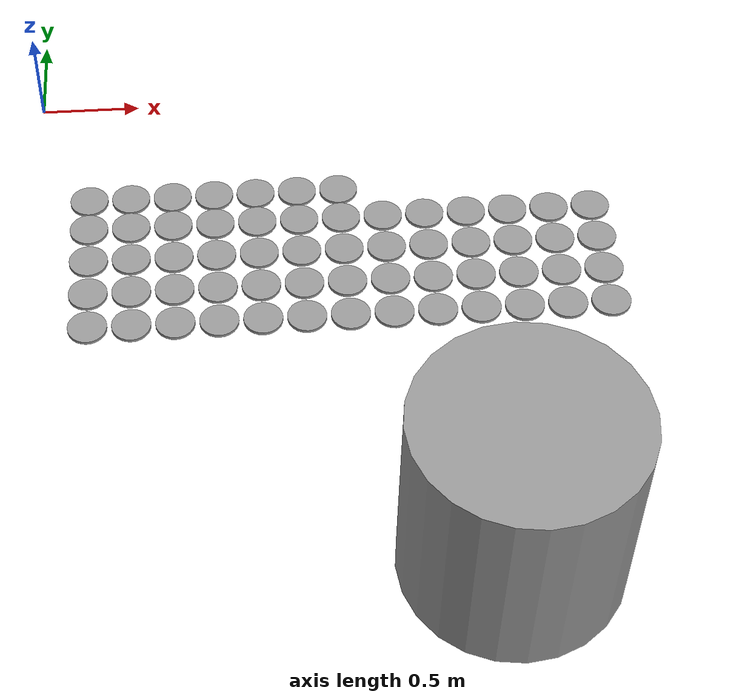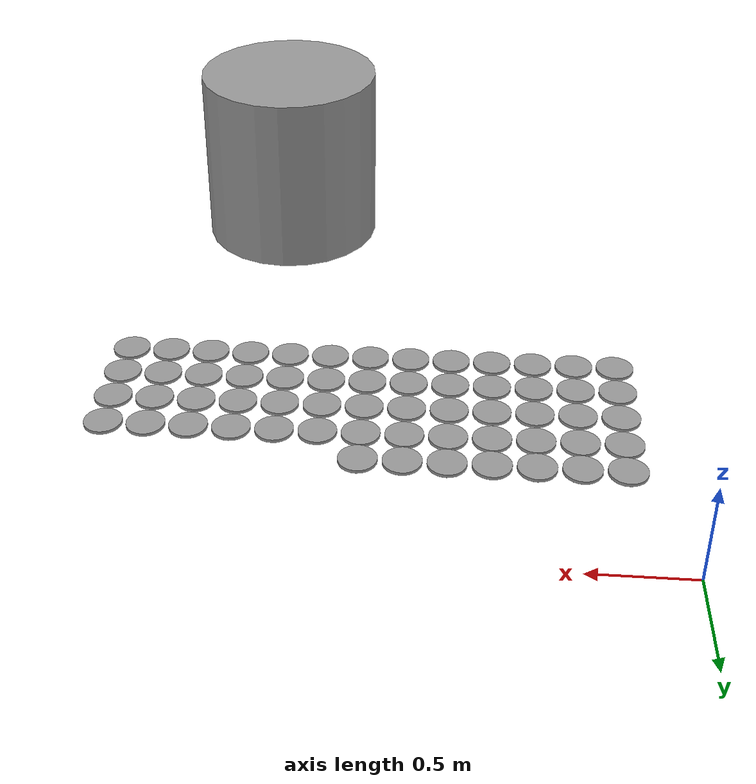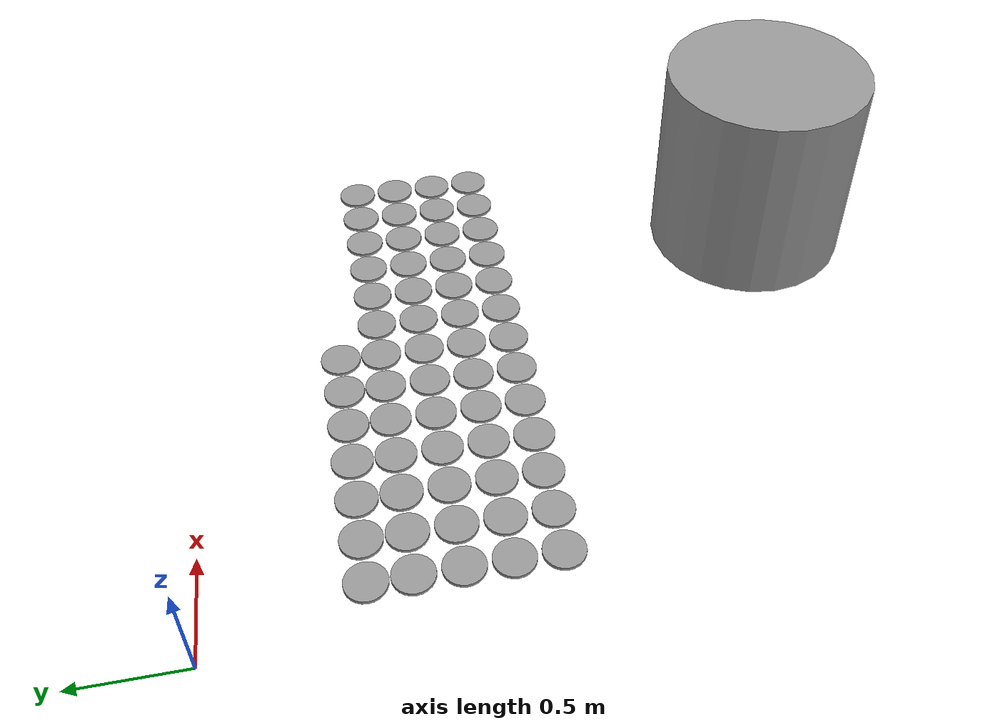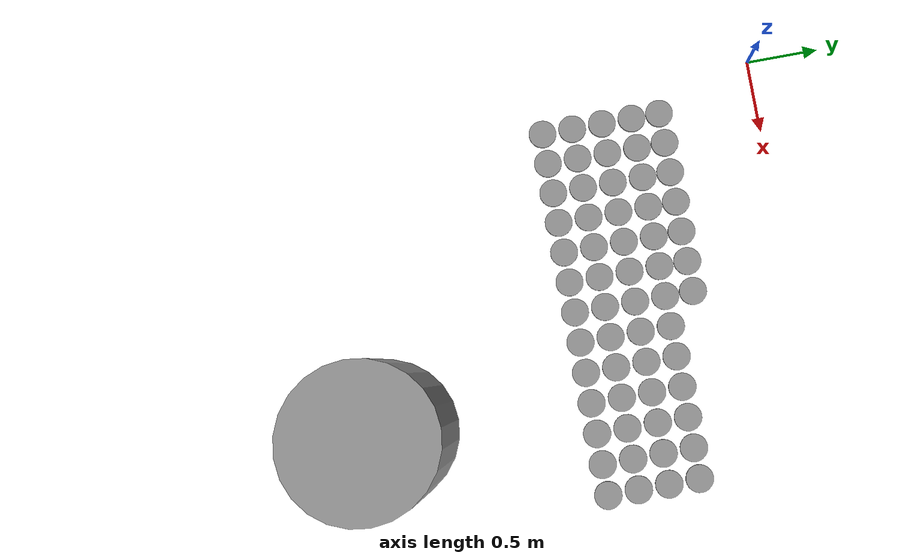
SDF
<sdf version="1.6">
 <world name="default">
  <model name="unit_cylinder_clone_625">
   <pose>0.25 -1.5 0.008117 0 -0 0</pose>
   <link name="link">
    <inertial>
     <mass>1</mass>
     <inertia><ixx>0.145833</ixx><ixy>0</ixy><ixz>0</ixz><iyy>0.145833</iyy><iyz>0</iyz><izz>0.125</izz></inertia>
    </inertial>
    <collision name="collision">
     <geometry><cylinder><radius>0.0950718</radius><length>0.0162339</length></cylinder></geometry>
     <max_contacts>5</max_contacts>
    </collision>
    <visual name="visual">
     <geometry><cylinder><radius>0.0950718</radius><length>0.0162339</length></cylinder></geometry>
     <material>
      <script><name>Gazebo/Grey</name><uri>file://media/materials/scripts/gazebo.material</uri></script>
     </material>
    </visual>
   </link>
  </model>
  <model name="unit_cylinder_clone_626">
   <pose>0.25 -1.29 0.008117 0 -0 0</pose>
   <link name="link">
    <inertial>
     <mass>1</mass>
     <inertia><ixx>0.145833</ixx><ixy>0</ixy><ixz>0</ixz><iyy>0.145833</iyy><iyz>0</iyz><izz>0.125</izz></inertia>
    </inertial>
    <collision name="collision">
     <geometry><cylinder><radius>0.0950718</radius><length>0.0162339</length></cylinder></geometry>
     <max_contacts>5</max_contacts>
    </collision>
    <visual name="visual">
     <geometry><cylinder><radius>0.0950718</radius><length>0.0162339</length></cylinder></geometry>
     <material>
      <script><name>Gazebo/Grey</name><uri>file://media/materials/scripts/gazebo.material</uri></script>
     </material>
    </visual>
   </link>
  </model>
  <model name="unit_cylinder_clone_627">
   <pose>0.25 -1.08 0.008117 0 -0 0</pose>
   <link name="link">
    <inertial>
     <mass>1</mass>
     <inertia><ixx>0.145833</ixx><ixy>0</ixy><ixz>0</ixz><iyy>0.145833</iyy><iyz>0</iyz><izz>0.125</izz></inertia>
    </inertial>
    <collision name="collision">
     <geometry><cylinder><radius>0.0950718</radius><length>0.0162339</length></cylinder></geometry>
     <max_contacts>5</max_contacts>
    </collision>
    <visual name="visual">
     <geometry><cylinder><radius>0.0950718</radius><length>0.0162339</length></cylinder></geometry>
     <material>
      <script><name>Gazebo/Grey</name><uri>file://media/materials/scripts/gazebo.material</uri></script>
     </material>
    </visual>
   </link>
  </model>
  <model name="unit_cylinder_clone_628">
   <pose>0.25 -0.87 0.008117 0 -0 0</pose>
   <link name="link">
    <inertial>
     <mass>1</mass>
     <inertia><ixx>0.145833</ixx><ixy>0</ixy><ixz>0</ixz><iyy>0.145833</iyy><iyz>0</iyz><izz>0.125</izz></inertia>
    </inertial>
    <collision name="collision">
     <geometry><cylinder><radius>0.0950718</radius><length>0.0162339</length></cylinder></geometry>
     <max_contacts>5</max_contacts>
    </collision>
    <visual name="visual">
     <geometry><cylinder><radius>0.0950718</radius><length>0.0162339</length></cylinder></geometry>
     <material>
      <script><name>Gazebo/Grey</name><uri>file://media/materials/scripts/gazebo.material</uri></script>
     </material>
    </visual>
   </link>
  </model>
  <model name="unit_cylinder_clone_629">
   <pose>0.25 -0.675077 0.008117 -0 -0 -0</pose>
   <link name="link">
    <inertial>
     <mass>1</mass>
     <inertia><ixx>0.145833</ixx><ixy>0</ixy><ixz>0</ixz><iyy>0.145833</iyy><iyz>0</iyz><izz>0.125</izz></inertia>
    </inertial>
    <collision name="collision">
     <geometry><cylinder><radius>0.0950718</radius><length>0.0162339</length></cylinder></geometry>
     <max_contacts>5</max_contacts>
    </collision>
    <visual name="visual">
     <geometry><cylinder><radius>0.0950718</radius><length>0.0162339</length></cylinder></geometry>
     <material>
      <script><name>Gazebo/Grey</name><uri>file://media/materials/scripts/gazebo.material</uri></script>
     </material>
    </visual>
   </link>
  </model>
  <model name="unit_cylinder_clone_630">
   <pose>0.46 -1.5 0.008117 0 -0 0</pose>
   <link name="link">
    <inertial>
     <mass>1</mass>
     <inertia><ixx>0.145833</ixx><ixy>0</ixy><ixz>0</ixz><iyy>0.145833</iyy><iyz>0</iyz><izz>0.125</izz></inertia>
    </inertial>
    <collision name="collision">
     <geometry><cylinder><radius>0.0950718</radius><length>0.0162339</length></cylinder></geometry>
     <max_contacts>5</max_contacts>
    </collision>
    <visual name="visual">
     <geometry><cylinder><radius>0.0950718</radius><length>0.0162339</length></cylinder></geometry>
     <material>
      <script><name>Gazebo/Grey</name><uri>file://media/materials/scripts/gazebo.material</uri></script>
     </material>
    </visual>
   </link>
  </model>
  <model name="unit_cylinder_clone_631">
   <pose>0.46 -1.29 0.008117 0 -0 0</pose>
   <link name="link">
    <inertial>
     <mass>1</mass>
     <inertia><ixx>0.145833</ixx><ixy>0</ixy><ixz>0</ixz><iyy>0.145833</iyy><iyz>0</iyz><izz>0.125</izz></inertia>
    </inertial>
    <collision name="collision">
     <geometry><cylinder><radius>0.0950718</radius><length>0.0162339</length></cylinder></geometry>
     <max_contacts>5</max_contacts>
    </collision>
    <visual name="visual">
     <geometry><cylinder><radius>0.0950718</radius><length>0.0162339</length></cylinder></geometry>
     <material>
      <script><name>Gazebo/Grey</name><uri>file://media/materials/scripts/gazebo.material</uri></script>
     </material>
    </visual>
   </link>
  </model>
  <model name="unit_cylinder_clone_632">
   <pose>0.46 -1.08 0.008117 0 -0 0</pose>
   <link name="link">
    <inertial>
     <mass>1</mass>
     <inertia><ixx>0.145833</ixx><ixy>0</ixy><ixz>0</ixz><iyy>0.145833</iyy><iyz>0</iyz><izz>0.125</izz></inertia>
    </inertial>
    <collision name="collision">
     <geometry><cylinder><radius>0.0950718</radius><length>0.0162339</length></cylinder></geometry>
     <max_contacts>5</max_contacts>
    </collision>
    <visual name="visual">
     <geometry><cylinder><radius>0.0950718</radius><length>0.0162339</length></cylinder></geometry>
     <material>
      <script><name>Gazebo/Grey</name><uri>file://media/materials/scripts/gazebo.material</uri></script>
     </material>
    </visual>
   </link>
  </model>
  <model name="unit_cylinder_clone_633">
   <pose>0.46 -0.87 0.008117 0 -0 0</pose>
   <link name="link">
    <inertial>
     <mass>1</mass>
     <inertia><ixx>0.145833</ixx><ixy>0</ixy><ixz>0</ixz><iyy>0.145833</iyy><iyz>0</iyz><izz>0.125</izz></inertia>
    </inertial>
    <collision name="collision">
     <geometry><cylinder><radius>0.0950718</radius><length>0.0162339</length></cylinder></geometry>
     <max_contacts>5</max_contacts>
    </collision>
    <visual name="visual">
     <geometry><cylinder><radius>0.0950718</radius><length>0.0162339</length></cylinder></geometry>
     <material>
      <script><name>Gazebo/Grey</name><uri>file://media/materials/scripts/gazebo.material</uri></script>
     </material>
    </visual>
   </link>
  </model>
  <model name="unit_cylinder_clone_634">
   <pose>0.46 -0.675077 0.008117 -0 -0 -0</pose>
   <link name="link">
    <inertial>
     <mass>1</mass>
     <inertia><ixx>0.145833</ixx><ixy>0</ixy><ixz>0</ixz><iyy>0.145833</iyy><iyz>0</iyz><izz>0.125</izz></inertia>
    </inertial>
    <collision name="collision">
     <geometry><cylinder><radius>0.0950718</radius><length>0.0162339</length></cylinder></geometry>
     <max_contacts>5</max_contacts>
    </collision>
    <visual name="visual">
     <geometry><cylinder><radius>0.0950718</radius><length>0.0162339</length></cylinder></geometry>
     <material>
      <script><name>Gazebo/Grey</name><uri>file://media/materials/scripts/gazebo.material</uri></script>
     </material>
    </visual>
   </link>
  </model>
  <model name="unit_cylinder_clone_635">
   <pose>0.67 -1.5 0.008117 0 -0 0</pose>
   <link name="link">
    <inertial>
     <mass>1</mass>
     <inertia><ixx>0.145833</ixx><ixy>0</ixy><ixz>0</ixz><iyy>0.145833</iyy><iyz>0</iyz><izz>0.125</izz></inertia>
    </inertial>
    <collision name="collision">
     <geometry><cylinder><radius>0.0950718</radius><length>0.0162339</length></cylinder></geometry>
     <max_contacts>5</max_contacts>
    </collision>
    <visual name="visual">
     <geometry><cylinder><radius>0.0950718</radius><length>0.0162339</length></cylinder></geometry>
     <material>
      <script><name>Gazebo/Grey</name><uri>file://media/materials/scripts/gazebo.material</uri></script>
     </material>
    </visual>
   </link>
  </model>
  <model name="unit_cylinder_clone_636">
   <pose>0.67 -1.29 0.008117 0 -0 0</pose>
   <link name="link">
    <inertial>
     <mass>1</mass>
     <inertia><ixx>0.145833</ixx><ixy>0</ixy><ixz>0</ixz><iyy>0.145833</iyy><iyz>0</iyz><izz>0.125</izz></inertia>
    </inertial>
    <collision name="collision">
     <geometry><cylinder><radius>0.0950718</radius><length>0.0162339</length></cylinder></geometry>
     <max_contacts>5</max_contacts>
    </collision>
    <visual name="visual">
     <geometry><cylinder><radius>0.0950718</radius><length>0.0162339</length></cylinder></geometry>
     <material>
      <script><name>Gazebo/Grey</name><uri>file://media/materials/scripts/gazebo.material</uri></script>
     </material>
    </visual>
   </link>
  </model>
  <model name="unit_cylinder_clone_637">
   <pose>0.67 -1.08 0.008117 0 -0 0</pose>
   <link name="link">
    <inertial>
     <mass>1</mass>
     <inertia><ixx>0.145833</ixx><ixy>0</ixy><ixz>0</ixz><iyy>0.145833</iyy><iyz>0</iyz><izz>0.125</izz></inertia>
    </inertial>
    <collision name="collision">
     <geometry><cylinder><radius>0.0950718</radius><length>0.0162339</length></cylinder></geometry>
     <max_contacts>5</max_contacts>
    </collision>
    <visual name="visual">
     <geometry><cylinder><radius>0.0950718</radius><length>0.0162339</length></cylinder></geometry>
     <material>
      <script><name>Gazebo/Grey</name><uri>file://media/materials/scripts/gazebo.material</uri></script>
     </material>
    </visual>
   </link>
  </model>
  <model name="unit_cylinder_clone_638">
   <pose>0.67 -0.87 0.008117 0 -0 0</pose>
   <link name="link">
    <inertial>
     <mass>1</mass>
     <inertia><ixx>0.145833</ixx><ixy>0</ixy><ixz>0</ixz><iyy>0.145833</iyy><iyz>0</iyz><izz>0.125</izz></inertia>
    </inertial>
    <collision name="collision">
     <geometry><cylinder><radius>0.0950718</radius><length>0.0162339</length></cylinder></geometry>
     <max_contacts>5</max_contacts>
    </collision>
    <visual name="visual">
     <geometry><cylinder><radius>0.0950718</radius><length>0.0162339</length></cylinder></geometry>
     <material>
      <script><name>Gazebo/Grey</name><uri>file://media/materials/scripts/gazebo.material</uri></script>
     </material>
    </visual>
   </link>
  </model>
  <model name="unit_cylinder_clone_639">
   <pose>0.67 -0.675077 0.008117 -0 -0 -0</pose>
   <link name="link">
    <inertial>
     <mass>1</mass>
     <inertia><ixx>0.145833</ixx><ixy>0</ixy><ixz>0</ixz><iyy>0.145833</iyy><iyz>0</iyz><izz>0.125</izz></inertia>
    </inertial>
    <collision name="collision">
     <geometry><cylinder><radius>0.0950718</radius><length>0.0162339</length></cylinder></geometry>
     <max_contacts>5</max_contacts>
    </collision>
    <visual name="visual">
     <geometry><cylinder><radius>0.0950718</radius><length>0.0162339</length></cylinder></geometry>
     <material>
      <script><name>Gazebo/Grey</name><uri>file://media/materials/scripts/gazebo.material</uri></script>
     </material>
    </visual>
   </link>
  </model>
  <model name="unit_cylinder_clone_640">
   <pose>0.88 -1.5 0.008117 0 -0 0</pose>
   <link name="link">
    <inertial>
     <mass>1</mass>
     <inertia><ixx>0.145833</ixx><ixy>0</ixy><ixz>0</ixz><iyy>0.145833</iyy><iyz>0</iyz><izz>0.125</izz></inertia>
    </inertial>
    <collision name="collision">
     <geometry><cylinder><radius>0.0950718</radius><length>0.0162339</length></cylinder></geometry>
     <max_contacts>5</max_contacts>
    </collision>
    <visual name="visual">
     <geometry><cylinder><radius>0.0950718</radius><length>0.0162339</length></cylinder></geometry>
     <material>
      <script><name>Gazebo/Grey</name><uri>file://media/materials/scripts/gazebo.material</uri></script>
     </material>
    </visual>
   </link>
  </model>
  <model name="unit_cylinder_clone_641">
   <pose>0.88 -1.29 0.008117 0 -0 0</pose>
   <link name="link">
    <inertial>
     <mass>1</mass>
     <inertia><ixx>0.145833</ixx><ixy>0</ixy><ixz>0</ixz><iyy>0.145833</iyy><iyz>0</iyz><izz>0.125</izz></inertia>
    </inertial>
    <collision name="collision">
     <geometry><cylinder><radius>0.0950718</radius><length>0.0162339</length></cylinder></geometry>
     <max_contacts>5</max_contacts>
    </collision>
    <visual name="visual">
     <geometry><cylinder><radius>0.0950718</radius><length>0.0162339</length></cylinder></geometry>
     <material>
      <script><name>Gazebo/Grey</name><uri>file://media/materials/scripts/gazebo.material</uri></script>
     </material>
    </visual>
   </link>
  </model>
  <model name="unit_cylinder_clone_642">
   <pose>0.88 -1.08 0.008117 0 -0 0</pose>
   <link name="link">
    <inertial>
     <mass>1</mass>
     <inertia><ixx>0.145833</ixx><ixy>0</ixy><ixz>0</ixz><iyy>0.145833</iyy><iyz>0</iyz><izz>0.125</izz></inertia>
    </inertial>
    <collision name="collision">
     <geometry><cylinder><radius>0.0950718</radius><length>0.0162339</length></cylinder></geometry>
     <max_contacts>5</max_contacts>
    </collision>
    <visual name="visual">
     <geometry><cylinder><radius>0.0950718</radius><length>0.0162339</length></cylinder></geometry>
     <material>
      <script><name>Gazebo/Grey</name><uri>file://media/materials/scripts/gazebo.material</uri></script>
     </material>
    </visual>
   </link>
  </model>
  <model name="unit_cylinder_clone_643">
   <pose>0.88 -0.87 0.008117 0 -0 0</pose>
   <link name="link">
    <inertial>
     <mass>1</mass>
     <inertia><ixx>0.145833</ixx><ixy>0</ixy><ixz>0</ixz><iyy>0.145833</iyy><iyz>0</iyz><izz>0.125</izz></inertia>
    </inertial>
    <collision name="collision">
     <geometry><cylinder><radius>0.0950718</radius><length>0.0162339</length></cylinder></geometry>
     <max_contacts>5</max_contacts>
    </collision>
    <visual name="visual">
     <geometry><cylinder><radius>0.0950718</radius><length>0.0162339</length></cylinder></geometry>
     <material>
      <script><name>Gazebo/Grey</name><uri>file://media/materials/scripts/gazebo.material</uri></script>
     </material>
    </visual>
   </link>
  </model>
  <model name="unit_cylinder_clone_644">
   <pose>0.88 -0.675077 0.008117 -0 -0 -0</pose>
   <link name="link">
    <inertial>
     <mass>1</mass>
     <inertia><ixx>0.145833</ixx><ixy>0</ixy><ixz>0</ixz><iyy>0.145833</iyy><iyz>0</iyz><izz>0.125</izz></inertia>
    </inertial>
    <collision name="collision">
     <geometry><cylinder><radius>0.0950718</radius><length>0.0162339</length></cylinder></geometry>
     <max_contacts>5</max_contacts>
    </collision>
    <visual name="visual">
     <geometry><cylinder><radius>0.0950718</radius><length>0.0162339</length></cylinder></geometry>
     <material>
      <script><name>Gazebo/Grey</name><uri>file://media/materials/scripts/gazebo.material</uri></script>
     </material>
    </visual>
   </link>
  </model>
  <model name="unit_cylinder_clone_645">
   <pose>1.09 -1.5 0.008117 0 -0 0</pose>
   <link name="link">
    <inertial>
     <mass>1</mass>
     <inertia><ixx>0.145833</ixx><ixy>0</ixy><ixz>0</ixz><iyy>0.145833</iyy><iyz>0</iyz><izz>0.125</izz></inertia>
    </inertial>
    <collision name="collision">
     <geometry><cylinder><radius>0.0950718</radius><length>0.0162339</length></cylinder></geometry>
     <max_contacts>5</max_contacts>
    </collision>
    <visual name="visual">
     <geometry><cylinder><radius>0.0950718</radius><length>0.0162339</length></cylinder></geometry>
     <material>
      <script><name>Gazebo/Grey</name><uri>file://media/materials/scripts/gazebo.material</uri></script>
     </material>
    </visual>
   </link>
  </model>
  <model name="unit_cylinder_clone_646">
   <pose>1.09 -1.29 0.008117 0 -0 0</pose>
   <link name="link">
    <inertial>
     <mass>1</mass>
     <inertia><ixx>0.145833</ixx><ixy>0</ixy><ixz>0</ixz><iyy>0.145833</iyy><iyz>0</iyz><izz>0.125</izz></inertia>
    </inertial>
    <collision name="collision">
     <geometry><cylinder><radius>0.0950718</radius><length>0.0162339</length></cylinder></geometry>
     <max_contacts>5</max_contacts>
    </collision>
    <visual name="visual">
     <geometry><cylinder><radius>0.0950718</radius><length>0.0162339</length></cylinder></geometry>
     <material>
      <script><name>Gazebo/Grey</name><uri>file://media/materials/scripts/gazebo.material</uri></script>
     </material>
    </visual>
   </link>
  </model>
  <model name="unit_cylinder_clone_647">
   <pose>1.09 -1.08 0.008117 0 -0 0</pose>
   <link name="link">
    <inertial>
     <mass>1</mass>
     <inertia><ixx>0.145833</ixx><ixy>0</ixy><ixz>0</ixz><iyy>0.145833</iyy><iyz>0</iyz><izz>0.125</izz></inertia>
    </inertial>
    <collision name="collision">
     <geometry><cylinder><radius>0.0950718</radius><length>0.0162339</length></cylinder></geometry>
     <max_contacts>5</max_contacts>
    </collision>
    <visual name="visual">
     <geometry><cylinder><radius>0.0950718</radius><length>0.0162339</length></cylinder></geometry>
     <material>
      <script><name>Gazebo/Grey</name><uri>file://media/materials/scripts/gazebo.material</uri></script>
     </material>
    </visual>
   </link>
  </model>
  <model name="unit_cylinder_clone_648">
   <pose>1.09 -0.87 0.008117 0 -0 0</pose>
   <link name="link">
    <inertial>
     <mass>1</mass>
     <inertia><ixx>0.145833</ixx><ixy>0</ixy><ixz>0</ixz><iyy>0.145833</iyy><iyz>0</iyz><izz>0.125</izz></inertia>
    </inertial>
    <collision name="collision">
     <geometry><cylinder><radius>0.0950718</radius><length>0.0162339</length></cylinder></geometry>
     <max_contacts>5</max_contacts>
    </collision>
    <visual name="visual">
     <geometry><cylinder><radius>0.0950718</radius><length>0.0162339</length></cylinder></geometry>
     <material>
      <script><name>Gazebo/Grey</name><uri>file://media/materials/scripts/gazebo.material</uri></script>
     </material>
    </visual>
   </link>
  </model>
  <model name="unit_cylinder_clone_649">
   <pose>1.09 -0.675077 0.008117 -0 -0 -0</pose>
   <link name="link">
    <inertial>
     <mass>1</mass>
     <inertia><ixx>0.145833</ixx><ixy>0</ixy><ixz>0</ixz><iyy>0.145833</iyy><iyz>0</iyz><izz>0.125</izz></inertia>
    </inertial>
    <collision name="collision">
     <geometry><cylinder><radius>0.0950718</radius><length>0.0162339</length></cylinder></geometry>
     <max_contacts>5</max_contacts>
    </collision>
    <visual name="visual">
     <geometry><cylinder><radius>0.0950718</radius><length>0.0162339</length></cylinder></geometry>
     <material>
      <script><name>Gazebo/Grey</name><uri>file://media/materials/scripts/gazebo.material</uri></script>
     </material>
    </visual>
   </link>
  </model>
  <model name="unit_cylinder_clone_650">
   <pose>1.3 -1.5 0.008117 0 -0 0</pose>
   <link name="link">
    <inertial>
     <mass>1</mass>
     <inertia><ixx>0.145833</ixx><ixy>0</ixy><ixz>0</ixz><iyy>0.145833</iyy><iyz>0</iyz><izz>0.125</izz></inertia>
    </inertial>
    <collision name="collision">
     <geometry><cylinder><radius>0.0950718</radius><length>0.0162339</length></cylinder></geometry>
     <max_contacts>5</max_contacts>
    </collision>
    <visual name="visual">
     <geometry><cylinder><radius>0.0950718</radius><length>0.0162339</length></cylinder></geometry>
     <material>
      <script><name>Gazebo/Grey</name><uri>file://media/materials/scripts/gazebo.material</uri></script>
     </material>
    </visual>
   </link>
  </model>
  <model name="unit_cylinder_clone_651">
   <pose>1.3 -1.29 0.008117 0 -0 0</pose>
   <link name="link">
    <inertial>
     <mass>1</mass>
     <inertia><ixx>0.145833</ixx><ixy>0</ixy><ixz>0</ixz><iyy>0.145833</iyy><iyz>0</iyz><izz>0.125</izz></inertia>
    </inertial>
    <collision name="collision">
     <geometry><cylinder><radius>0.0950718</radius><length>0.0162339</length></cylinder></geometry>
     <max_contacts>5</max_contacts>
    </collision>
    <visual name="visual">
     <geometry><cylinder><radius>0.0950718</radius><length>0.0162339</length></cylinder></geometry>
     <material>
      <script><name>Gazebo/Grey</name><uri>file://media/materials/scripts/gazebo.material</uri></script>
     </material>
    </visual>
   </link>
  </model>
  <model name="unit_cylinder_clone_652">
   <pose>1.3 -1.08 0.008117 0 -0 0</pose>
   <link name="link">
    <inertial>
     <mass>1</mass>
     <inertia><ixx>0.145833</ixx><ixy>0</ixy><ixz>0</ixz><iyy>0.145833</iyy><iyz>0</iyz><izz>0.125</izz></inertia>
    </inertial>
    <collision name="collision">
     <geometry><cylinder><radius>0.0950718</radius><length>0.0162339</length></cylinder></geometry>
     <max_contacts>5</max_contacts>
    </collision>
    <visual name="visual">
     <geometry><cylinder><radius>0.0950718</radius><length>0.0162339</length></cylinder></geometry>
     <material>
      <script><name>Gazebo/Grey</name><uri>file://media/materials/scripts/gazebo.material</uri></script>
     </material>
    </visual>
   </link>
  </model>
  <model name="unit_cylinder_clone_653">
   <pose>1.3 -0.87 0.008117 0 -0 0</pose>
   <link name="link">
    <inertial>
     <mass>1</mass>
     <inertia><ixx>0.145833</ixx><ixy>0</ixy><ixz>0</ixz><iyy>0.145833</iyy><iyz>0</iyz><izz>0.125</izz></inertia>
    </inertial>
    <collision name="collision">
     <geometry><cylinder><radius>0.0950718</radius><length>0.0162339</length></cylinder></geometry>
     <max_contacts>5</max_contacts>
    </collision>
    <visual name="visual">
     <geometry><cylinder><radius>0.0950718</radius><length>0.0162339</length></cylinder></geometry>
     <material>
      <script><name>Gazebo/Grey</name><uri>file://media/materials/scripts/gazebo.material</uri></script>
     </material>
    </visual>
   </link>
  </model>
  <model name="unit_cylinder_clone_654">
   <pose>1.3 -0.675077 0.008117 -0 -0 -0</pose>
   <link name="link">
    <inertial>
     <mass>1</mass>
     <inertia><ixx>0.145833</ixx><ixy>0</ixy><ixz>0</ixz><iyy>0.145833</iyy><iyz>0</iyz><izz>0.125</izz></inertia>
    </inertial>
    <collision name="collision">
     <geometry><cylinder><radius>0.0950718</radius><length>0.0162339</length></cylinder></geometry>
     <max_contacts>5</max_contacts>
    </collision>
    <visual name="visual">
     <geometry><cylinder><radius>0.0950718</radius><length>0.0162339</length></cylinder></geometry>
     <material>
      <script><name>Gazebo/Grey</name><uri>file://media/materials/scripts/gazebo.material</uri></script>
     </material>
    </visual>
   </link>
  </model>
  <model name="unit_cylinder_clone_655">
   <pose>1.51 -1.5 0.008117 0 -0 0</pose>
   <link name="link">
    <inertial>
     <mass>1</mass>
     <inertia><ixx>0.145833</ixx><ixy>0</ixy><ixz>0</ixz><iyy>0.145833</iyy><iyz>0</iyz><izz>0.125</izz></inertia>
    </inertial>
    <collision name="collision">
     <geometry><cylinder><radius>0.0950718</radius><length>0.0162339</length></cylinder></geometry>
     <max_contacts>5</max_contacts>
    </collision>
    <visual name="visual">
     <geometry><cylinder><radius>0.0950718</radius><length>0.0162339</length></cylinder></geometry>
     <material>
      <script><name>Gazebo/Grey</name><uri>file://media/materials/scripts/gazebo.material</uri></script>
     </material>
    </visual>
   </link>
  </model>
  <model name="unit_cylinder_clone_656">
   <pose>1.51 -1.29 0.008117 0 -0 0</pose>
   <link name="link">
    <inertial>
     <mass>1</mass>
     <inertia><ixx>0.145833</ixx><ixy>0</ixy><ixz>0</ixz><iyy>0.145833</iyy><iyz>0</iyz><izz>0.125</izz></inertia>
    </inertial>
    <collision name="collision">
     <geometry><cylinder><radius>0.0950718</radius><length>0.0162339</length></cylinder></geometry>
     <max_contacts>5</max_contacts>
    </collision>
    <visual name="visual">
     <geometry><cylinder><radius>0.0950718</radius><length>0.0162339</length></cylinder></geometry>
     <material>
      <script><name>Gazebo/Grey</name><uri>file://media/materials/scripts/gazebo.material</uri></script>
     </material>
    </visual>
   </link>
  </model>
  <model name="unit_cylinder_clone_657">
   <pose>1.51 -1.08 0.008117 0 -0 0</pose>
   <link name="link">
    <inertial>
     <mass>1</mass>
     <inertia><ixx>0.145833</ixx><ixy>0</ixy><ixz>0</ixz><iyy>0.145833</iyy><iyz>0</iyz><izz>0.125</izz></inertia>
    </inertial>
    <collision name="collision">
     <geometry><cylinder><radius>0.0950718</radius><length>0.0162339</length></cylinder></geometry>
     <max_contacts>5</max_contacts>
    </collision>
    <visual name="visual">
     <geometry><cylinder><radius>0.0950718</radius><length>0.0162339</length></cylinder></geometry>
     <material>
      <script><name>Gazebo/Grey</name><uri>file://media/materials/scripts/gazebo.material</uri></script>
     </material>
    </visual>
   </link>
  </model>
  <model name="unit_cylinder_clone_658">
   <pose>1.51 -0.87 0.008117 0 -0 0</pose>
   <link name="link">
    <inertial>
     <mass>1</mass>
     <inertia><ixx>0.145833</ixx><ixy>0</ixy><ixz>0</ixz><iyy>0.145833</iyy><iyz>0</iyz><izz>0.125</izz></inertia>
    </inertial>
    <collision name="collision">
     <geometry><cylinder><radius>0.0950718</radius><length>0.0162339</length></cylinder></geometry>
     <max_contacts>5</max_contacts>
    </collision>
    <visual name="visual">
     <geometry><cylinder><radius>0.0950718</radius><length>0.0162339</length></cylinder></geometry>
     <material>
      <script><name>Gazebo/Grey</name><uri>file://media/materials/scripts/gazebo.material</uri></script>
     </material>
    </visual>
   </link>
  </model>
  <model name="unit_cylinder_clone_659">
   <pose>1.51 -0.675077 0.008117 -0 -0 -0</pose>
   <link name="link">
    <inertial>
     <mass>1</mass>
     <inertia><ixx>0.145833</ixx><ixy>0</ixy><ixz>0</ixz><iyy>0.145833</iyy><iyz>0</iyz><izz>0.125</izz></inertia>
    </inertial>
    <collision name="collision">
     <geometry><cylinder><radius>0.0950718</radius><length>0.0162339</length></cylinder></geometry>
     <max_contacts>5</max_contacts>
    </collision>
    <visual name="visual">
     <geometry><cylinder><radius>0.0950718</radius><length>0.0162339</length></cylinder></geometry>
     <material>
      <script><name>Gazebo/Grey</name><uri>file://media/materials/scripts/gazebo.material</uri></script>
     </material>
    </visual>
   </link>
  </model>
  <model name="unit_cylinder_clone_660">
   <pose>1.72 -1.5 0.008117 0 -0 0</pose>
   <link name="link">
    <inertial>
     <mass>1</mass>
     <inertia><ixx>0.145833</ixx><ixy>0</ixy><ixz>0</ixz><iyy>0.145833</iyy><iyz>0</iyz><izz>0.125</izz></inertia>
    </inertial>
    <collision name="collision">
     <geometry><cylinder><radius>0.0950718</radius><length>0.0162339</length></cylinder></geometry>
     <max_contacts>5</max_contacts>
    </collision>
    <visual name="visual">
     <geometry><cylinder><radius>0.0950718</radius><length>0.0162339</length></cylinder></geometry>
     <material>
      <script><name>Gazebo/Grey</name><uri>file://media/materials/scripts/gazebo.material</uri></script>
     </material>
    </visual>
   </link>
  </model>
  <model name="unit_cylinder_clone_661">
   <pose>1.72 -1.29 0.008117 0 -0 0</pose>
   <link name="link">
    <inertial>
     <mass>1</mass>
     <inertia><ixx>0.145833</ixx><ixy>0</ixy><ixz>0</ixz><iyy>0.145833</iyy><iyz>0</iyz><izz>0.125</izz></inertia>
    </inertial>
    <collision name="collision">
     <geometry><cylinder><radius>0.0950718</radius><length>0.0162339</length></cylinder></geometry>
     <max_contacts>5</max_contacts>
    </collision>
    <visual name="visual">
     <geometry><cylinder><radius>0.0950718</radius><length>0.0162339</length></cylinder></geometry>
     <material>
      <script><name>Gazebo/Grey</name><uri>file://media/materials/scripts/gazebo.material</uri></script>
     </material>
    </visual>
   </link>
  </model>
  <model name="unit_cylinder_clone_662">
   <pose>1.72 -1.08 0.008117 0 -0 0</pose>
   <link name="link">
    <inertial>
     <mass>1</mass>
     <inertia><ixx>0.145833</ixx><ixy>0</ixy><ixz>0</ixz><iyy>0.145833</iyy><iyz>0</iyz><izz>0.125</izz></inertia>
    </inertial>
    <collision name="collision">
     <geometry><cylinder><radius>0.0950718</radius><length>0.0162339</length></cylinder></geometry>
     <max_contacts>5</max_contacts>
    </collision>
    <visual name="visual">
     <geometry><cylinder><radius>0.0950718</radius><length>0.0162339</length></cylinder></geometry>
     <material>
      <script><name>Gazebo/Grey</name><uri>file://media/materials/scripts/gazebo.material</uri></script>
     </material>
    </visual>
   </link>
  </model>
  <model name="unit_cylinder_clone_663">
   <pose>1.72 -0.87 0.008117 0 -0 0</pose>
   <link name="link">
    <inertial>
     <mass>1</mass>
     <inertia><ixx>0.145833</ixx><ixy>0</ixy><ixz>0</ixz><iyy>0.145833</iyy><iyz>0</iyz><izz>0.125</izz></inertia>
    </inertial>
    <collision name="collision">
     <geometry><cylinder><radius>0.0950718</radius><length>0.0162339</length></cylinder></geometry>
     <max_contacts>5</max_contacts>
    </collision>
    <visual name="visual">
     <geometry><cylinder><radius>0.0950718</radius><length>0.0162339</length></cylinder></geometry>
     <material>
      <script><name>Gazebo/Grey</name><uri>file://media/materials/scripts/gazebo.material</uri></script>
     </material>
    </visual>
   </link>
  </model>
  <model name="unit_cylinder_clone_665">
   <pose>1.93 -1.5 0.008117 0 -0 0</pose>
   <link name="link">
    <inertial>
     <mass>1</mass>
     <inertia><ixx>0.145833</ixx><ixy>0</ixy><ixz>0</ixz><iyy>0.145833</iyy><iyz>0</iyz><izz>0.125</izz></inertia>
    </inertial>
    <collision name="collision">
     <geometry><cylinder><radius>0.0950718</radius><length>0.0162339</length></cylinder></geometry>
     <max_contacts>5</max_contacts>
    </collision>
    <visual name="visual">
     <geometry><cylinder><radius>0.0950718</radius><length>0.0162339</length></cylinder></geometry>
     <material>
      <script><name>Gazebo/Grey</name><uri>file://media/materials/scripts/gazebo.material</uri></script>
     </material>
    </visual>
   </link>
  </model>
  <model name="unit_cylinder_clone_666">
   <pose>1.93 -1.29 0.008117 0 -0 0</pose>
   <link name="link">
    <inertial>
     <mass>1</mass>
     <inertia><ixx>0.145833</ixx><ixy>0</ixy><ixz>0</ixz><iyy>0.145833</iyy><iyz>0</iyz><izz>0.125</izz></inertia>
    </inertial>
    <collision name="collision">
     <geometry><cylinder><radius>0.0950718</radius><length>0.0162339</length></cylinder></geometry>
     <max_contacts>5</max_contacts>
    </collision>
    <visual name="visual">
     <geometry><cylinder><radius>0.0950718</radius><length>0.0162339</length></cylinder></geometry>
     <material>
      <script><name>Gazebo/Grey</name><uri>file://media/materials/scripts/gazebo.material</uri></script>
     </material>
    </visual>
   </link>
  </model>
  <model name="unit_cylinder_clone_667">
   <pose>1.93 -1.08 0.008117 0 -0 0</pose>
   <link name="link">
    <inertial>
     <mass>1</mass>
     <inertia><ixx>0.145833</ixx><ixy>0</ixy><ixz>0</ixz><iyy>0.145833</iyy><iyz>0</iyz><izz>0.125</izz></inertia>
    </inertial>
    <collision name="collision">
     <geometry><cylinder><radius>0.0950718</radius><length>0.0162339</length></cylinder></geometry>
     <max_contacts>5</max_contacts>
    </collision>
    <visual name="visual">
     <geometry><cylinder><radius>0.0950718</radius><length>0.0162339</length></cylinder></geometry>
     <material>
      <script><name>Gazebo/Grey</name><uri>file://media/materials/scripts/gazebo.material</uri></script>
     </material>
    </visual>
   </link>
  </model>
  <model name="unit_cylinder_clone_668">
   <pose>1.93 -0.87 0.008117 0 -0 0</pose>
   <link name="link">
    <inertial>
     <mass>1</mass>
     <inertia><ixx>0.145833</ixx><ixy>0</ixy><ixz>0</ixz><iyy>0.145833</iyy><iyz>0</iyz><izz>0.125</izz></inertia>
    </inertial>
    <collision name="collision">
     <geometry><cylinder><radius>0.0950718</radius><length>0.0162339</length></cylinder></geometry>
     <max_contacts>5</max_contacts>
    </collision>
    <visual name="visual">
     <geometry><cylinder><radius>0.0950718</radius><length>0.0162339</length></cylinder></geometry>
     <material>
      <script><name>Gazebo/Grey</name><uri>file://media/materials/scripts/gazebo.material</uri></script>
     </material>
    </visual>
   </link>
  </model>
  <model name="unit_cylinder_clone_670">
   <pose>2.14 -1.5 0.008117 0 -0 0</pose>
   <link name="link">
    <inertial>
     <mass>1</mass>
     <inertia><ixx>0.145833</ixx><ixy>0</ixy><ixz>0</ixz><iyy>0.145833</iyy><iyz>0</iyz><izz>0.125</izz></inertia>
    </inertial>
    <collision name="collision">
     <geometry><cylinder><radius>0.0950718</radius><length>0.0162339</length></cylinder></geometry>
     <max_contacts>5</max_contacts>
    </collision>
    <visual name="visual">
     <geometry><cylinder><radius>0.0950718</radius><length>0.0162339</length></cylinder></geometry>
     <material>
      <script><name>Gazebo/Grey</name><uri>file://media/materials/scripts/gazebo.material</uri></script>
     </material>
    </visual>
   </link>
  </model>
  <model name="unit_cylinder_clone_671">
   <pose>2.14 -1.29 0.008117 0 -0 0</pose>
   <link name="link">
    <inertial>
     <mass>1</mass>
     <inertia><ixx>0.145833</ixx><ixy>0</ixy><ixz>0</ixz><iyy>0.145833</iyy><iyz>0</iyz><izz>0.125</izz></inertia>
    </inertial>
    <collision name="collision">
     <geometry><cylinder><radius>0.0950718</radius><length>0.0162339</length></cylinder></geometry>
     <max_contacts>5</max_contacts>
    </collision>
    <visual name="visual">
     <geometry><cylinder><radius>0.0950718</radius><length>0.0162339</length></cylinder></geometry>
     <material>
      <script><name>Gazebo/Grey</name><uri>file://media/materials/scripts/gazebo.material</uri></script>
     </material>
    </visual>
   </link>
  </model>
  <model name="unit_cylinder_clone_672">
   <pose>2.14 -1.08 0.008117 0 -0 0</pose>
   <link name="link">
    <inertial>
     <mass>1</mass>
     <inertia><ixx>0.145833</ixx><ixy>0</ixy><ixz>0</ixz><iyy>0.145833</iyy><iyz>0</iyz><izz>0.125</izz></inertia>
    </inertial>
    <collision name="collision">
     <geometry><cylinder><radius>0.0950718</radius><length>0.0162339</length></cylinder></geometry>
     <max_contacts>5</max_contacts>
    </collision>
    <visual name="visual">
     <geometry><cylinder><radius>0.0950718</radius><length>0.0162339</length></cylinder></geometry>
     <material>
      <script><name>Gazebo/Grey</name><uri>file://media/materials/scripts/gazebo.material</uri></script>
     </material>
    </visual>
   </link>
  </model>
  <model name="unit_cylinder_clone_673">
   <pose>2.14 -0.87 0.008117 0 -0 0</pose>
   <link name="link">
    <inertial>
     <mass>1</mass>
     <inertia><ixx>0.145833</ixx><ixy>0</ixy><ixz>0</ixz><iyy>0.145833</iyy><iyz>0</iyz><izz>0.125</izz></inertia>
    </inertial>
    <collision name="collision">
     <geometry><cylinder><radius>0.0950718</radius><length>0.0162339</length></cylinder></geometry>
     <max_contacts>5</max_contacts>
    </collision>
    <visual name="visual">
     <geometry><cylinder><radius>0.0950718</radius><length>0.0162339</length></cylinder></geometry>
     <material>
      <script><name>Gazebo/Grey</name><uri>file://media/materials/scripts/gazebo.material</uri></script>
     </material>
    </visual>
   </link>
  </model>
  <model name="unit_cylinder_clone_675">
   <pose>2.35 -1.5 0.008117 0 -0 0</pose>
   <link name="link">
    <inertial>
     <mass>1</mass>
     <inertia><ixx>0.145833</ixx><ixy>0</ixy><ixz>0</ixz><iyy>0.145833</iyy><iyz>0</iyz><izz>0.125</izz></inertia>
    </inertial>
    <collision name="collision">
     <geometry><cylinder><radius>0.0950718</radius><length>0.0162339</length></cylinder></geometry>
     <max_contacts>5</max_contacts>
    </collision>
    <visual name="visual">
     <geometry><cylinder><radius>0.0950718</radius><length>0.0162339</length></cylinder></geometry>
     <material>
      <script><name>Gazebo/Grey</name><uri>file://media/materials/scripts/gazebo.material</uri></script>
     </material>
    </visual>
   </link>
  </model>
  <model name="unit_cylinder_clone_676">
   <pose>2.35 -1.29 0.008117 0 -0 0</pose>
   <link name="link">
    <inertial>
     <mass>1</mass>
     <inertia><ixx>0.145833</ixx><ixy>0</ixy><ixz>0</ixz><iyy>0.145833</iyy><iyz>0</iyz><izz>0.125</izz></inertia>
    </inertial>
    <collision name="collision">
     <geometry><cylinder><radius>0.0950718</radius><length>0.0162339</length></cylinder></geometry>
     <max_contacts>5</max_contacts>
    </collision>
    <visual name="visual">
     <geometry><cylinder><radius>0.0950718</radius><length>0.0162339</length></cylinder></geometry>
     <material>
      <script><name>Gazebo/Grey</name><uri>file://media/materials/scripts/gazebo.material</uri></script>
     </material>
    </visual>
   </link>
  </model>
  <model name="unit_cylinder_clone_677">
   <pose>2.35 -1.08 0.008117 0 -0 0</pose>
   <link name="link">
    <inertial>
     <mass>1</mass>
     <inertia><ixx>0.145833</ixx><ixy>0</ixy><ixz>0</ixz><iyy>0.145833</iyy><iyz>0</iyz><izz>0.125</izz></inertia>
    </inertial>
    <collision name="collision">
     <geometry><cylinder><radius>0.0950718</radius><length>0.0162339</length></cylinder></geometry>
     <max_contacts>5</max_contacts>
    </collision>
    <visual name="visual">
     <geometry><cylinder><radius>0.0950718</radius><length>0.0162339</length></cylinder></geometry>
     <material>
      <script><name>Gazebo/Grey</name><uri>file://media/materials/scripts/gazebo.material</uri></script>
     </material>
    </visual>
   </link>
  </model>
  <model name="unit_cylinder_clone_678">
   <pose>2.35 -0.87 0.008117 0 -0 0</pose>
   <link name="link">
    <inertial>
     <mass>1</mass>
     <inertia><ixx>0.145833</ixx><ixy>0</ixy><ixz>0</ixz><iyy>0.145833</iyy><iyz>0</iyz><izz>0.125</izz></inertia>
    </inertial>
    <collision name="collision">
     <geometry><cylinder><radius>0.0950718</radius><length>0.0162339</length></cylinder></geometry>
     <max_contacts>5</max_contacts>
    </collision>
    <visual name="visual">
     <geometry><cylinder><radius>0.0950718</radius><length>0.0162339</length></cylinder></geometry>
     <material>
      <script><name>Gazebo/Grey</name><uri>file://media/materials/scripts/gazebo.material</uri></script>
     </material>
    </visual>
   </link>
  </model>
  <model name="unit_cylinder_clone_680">
   <pose>2.56 -1.5 0.008117 0 -0 0</pose>
   <link name="link">
    <inertial>
     <mass>1</mass>
     <inertia><ixx>0.145833</ixx><ixy>0</ixy><ixz>0</ixz><iyy>0.145833</iyy><iyz>0</iyz><izz>0.125</izz></inertia>
    </inertial>
    <collision name="collision">
     <geometry><cylinder><radius>0.0950718</radius><length>0.0162339</length></cylinder></geometry>
     <max_contacts>5</max_contacts>
    </collision>
    <visual name="visual">
     <geometry><cylinder><radius>0.0950718</radius><length>0.0162339</length></cylinder></geometry>
     <material>
      <script><name>Gazebo/Grey</name><uri>file://media/materials/scripts/gazebo.material</uri></script>
     </material>
    </visual>
   </link>
  </model>
  <model name="unit_cylinder_clone_681">
   <pose>2.56 -1.29 0.008117 0 -0 0</pose>
   <link name="link">
    <inertial>
     <mass>1</mass>
     <inertia><ixx>0.145833</ixx><ixy>0</ixy><ixz>0</ixz><iyy>0.145833</iyy><iyz>0</iyz><izz>0.125</izz></inertia>
    </inertial>
    <collision name="collision">
     <geometry><cylinder><radius>0.0950718</radius><length>0.0162339</length></cylinder></geometry>
     <max_contacts>5</max_contacts>
    </collision>
    <visual name="visual">
     <geometry><cylinder><radius>0.0950718</radius><length>0.0162339</length></cylinder></geometry>
     <material>
      <script><name>Gazebo/Grey</name><uri>file://media/materials/scripts/gazebo.material</uri></script>
     </material>
    </visual>
   </link>
  </model>
  <model name="unit_cylinder_clone_682">
   <pose>2.56 -1.08 0.008117 0 -0 0</pose>
   <link name="link">
    <inertial>
     <mass>1</mass>
     <inertia><ixx>0.145833</ixx><ixy>0</ixy><ixz>0</ixz><iyy>0.145833</iyy><iyz>0</iyz><izz>0.125</izz></inertia>
    </inertial>
    <collision name="collision">
     <geometry><cylinder><radius>0.0950718</radius><length>0.0162339</length></cylinder></geometry>
     <max_contacts>5</max_contacts>
    </collision>
    <visual name="visual">
     <geometry><cylinder><radius>0.0950718</radius><length>0.0162339</length></cylinder></geometry>
     <material>
      <script><name>Gazebo/Grey</name><uri>file://media/materials/scripts/gazebo.material</uri></script>
     </material>
    </visual>
   </link>
  </model>
  <model name="unit_cylinder_clone_683">
   <pose>2.56 -0.87 0.008117 0 -0 0</pose>
   <link name="link">
    <inertial>
     <mass>1</mass>
     <inertia><ixx>0.145833</ixx><ixy>0</ixy><ixz>0</ixz><iyy>0.145833</iyy><iyz>0</iyz><izz>0.125</izz></inertia>
    </inertial>
    <collision name="collision">
     <geometry><cylinder><radius>0.0950718</radius><length>0.0162339</length></cylinder></geometry>
     <max_contacts>5</max_contacts>
    </collision>
    <visual name="visual">
     <geometry><cylinder><radius>0.0950718</radius><length>0.0162339</length></cylinder></geometry>
     <material>
      <script><name>Gazebo/Grey</name><uri>file://media/materials/scripts/gazebo.material</uri></script>
     </material>
    </visual>
   </link>
  </model>
  <model name="unit_cylinder_clone_685">
   <pose>2.77 -1.5 0.008117 0 -0 0</pose>
   <link name="link">
    <inertial>
     <mass>1</mass>
     <inertia><ixx>0.145833</ixx><ixy>0</ixy><ixz>0</ixz><iyy>0.145833</iyy><iyz>0</iyz><izz>0.125</izz></inertia>
    </inertial>
    <collision name="collision">
     <geometry><cylinder><radius>0.0950718</radius><length>0.0162339</length></cylinder></geometry>
     <max_contacts>5</max_contacts>
    </collision>
    <visual name="visual">
     <geometry><cylinder><radius>0.0950718</radius><length>0.0162339</length></cylinder></geometry>
     <material>
      <script><name>Gazebo/Grey</name><uri>file://media/materials/scripts/gazebo.material</uri></script>
     </material>
    </visual>
   </link>
  </model>
  <model name="unit_cylinder_clone_686">
   <pose>2.77 -1.29 0.008117 0 -0 0</pose>
   <link name="link">
    <inertial>
     <mass>1</mass>
     <inertia><ixx>0.145833</ixx><ixy>0</ixy><ixz>0</ixz><iyy>0.145833</iyy><iyz>0</iyz><izz>0.125</izz></inertia>
    </inertial>
    <collision name="collision">
     <geometry><cylinder><radius>0.0950718</radius><length>0.0162339</length></cylinder></geometry>
     <max_contacts>5</max_contacts>
    </collision>
    <visual name="visual">
     <geometry><cylinder><radius>0.0950718</radius><length>0.0162339</length></cylinder></geometry>
     <material>
      <script><name>Gazebo/Grey</name><uri>file://media/materials/scripts/gazebo.material</uri></script>
     </material>
    </visual>
   </link>
  </model>
  <model name="unit_cylinder_clone_687">
   <pose>2.77 -1.08 0.008117 0 -0 0</pose>
   <link name="link">
    <inertial>
     <mass>1</mass>
     <inertia><ixx>0.145833</ixx><ixy>0</ixy><ixz>0</ixz><iyy>0.145833</iyy><iyz>0</iyz><izz>0.125</izz></inertia>
    </inertial>
    <collision name="collision">
     <geometry><cylinder><radius>0.0950718</radius><length>0.0162339</length></cylinder></geometry>
     <max_contacts>5</max_contacts>
    </collision>
    <visual name="visual">
     <geometry><cylinder><radius>0.0950718</radius><length>0.0162339</length></cylinder></geometry>
     <material>
      <script><name>Gazebo/Grey</name><uri>file://media/materials/scripts/gazebo.material</uri></script>
     </material>
    </visual>
   </link>
  </model>
  <model name="unit_cylinder_clone_688">
   <pose>2.77 -0.87 0.008117 0 -0 0</pose>
   <link name="link">
    <inertial>
     <mass>1</mass>
     <inertia><ixx>0.145833</ixx><ixy>0</ixy><ixz>0</ixz><iyy>0.145833</iyy><iyz>0</iyz><izz>0.125</izz></inertia>
    </inertial>
    <collision name="collision">
     <geometry><cylinder><radius>0.0950718</radius><length>0.0162339</length></cylinder></geometry>
     <max_contacts>5</max_contacts>
    </collision>
    <visual name="visual">
     <geometry><cylinder><radius>0.0950718</radius><length>0.0162339</length></cylinder></geometry>
     <material>
      <script><name>Gazebo/Grey</name><uri>file://media/materials/scripts/gazebo.material</uri></script>
     </material>
    </visual>
   </link>
  </model>
  <model name="unit_cylinder_11">
   <pose>2.0875 -2.90984 0.499993 -3e-06 -4e-06 -0</pose>
   <link name="link">
    <inertial>
     <mass>1</mass>
     <inertia><ixx>0.145833</ixx><ixy>0</ixy><ixz>0</ixz><iyy>0.145833</iyy><iyz>0</iyz><izz>0.125</izz></inertia>
    </inertial>
    <collision name="collision">
     <geometry><cylinder><radius>0.5</radius><length>1</length></cylinder></geometry>
    </collision>
    <visual name="visual">
     <geometry><cylinder><radius>0.5</radius><length>1</length></cylinder></geometry>
     <material>
      <script><name>Gazebo/Grey</name><uri>file://media/materials/scripts/gazebo.material</uri></script>
     </material>
    </visual>
   </link>
  </model>
 </world>
</sdf>
